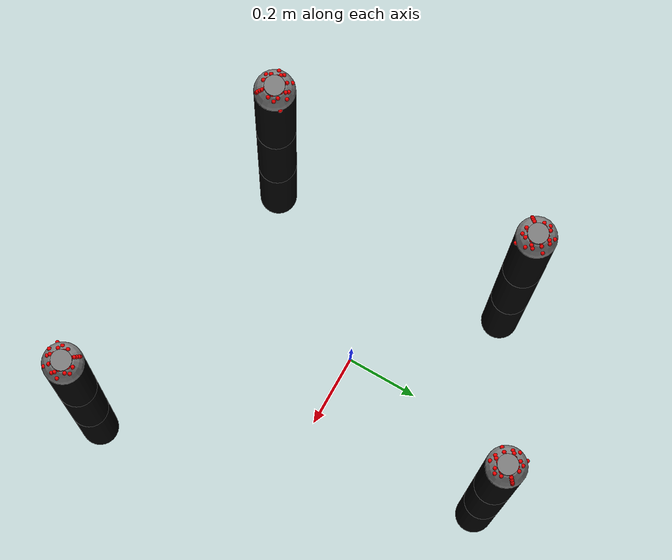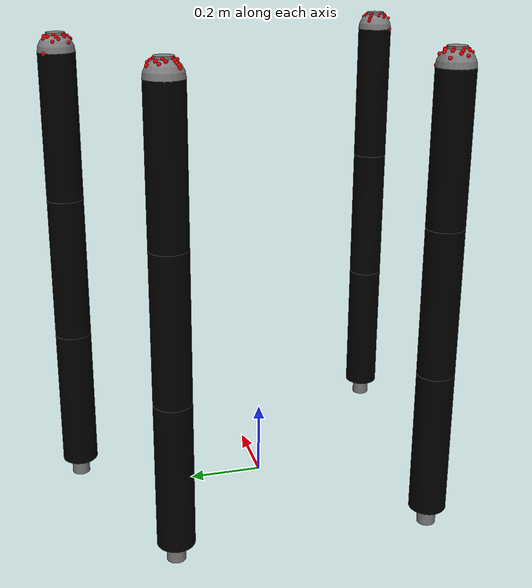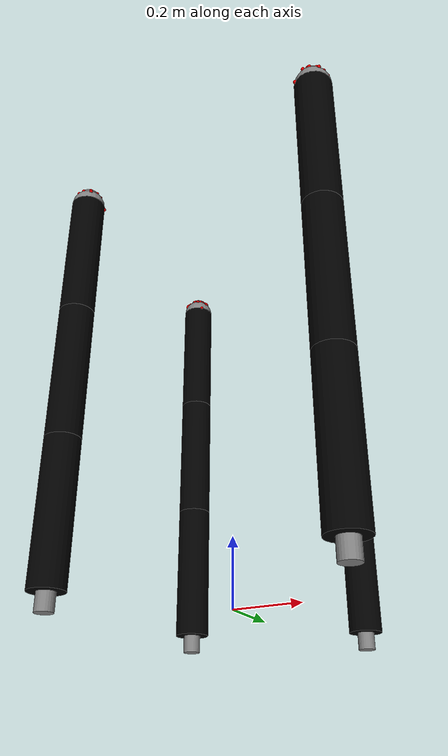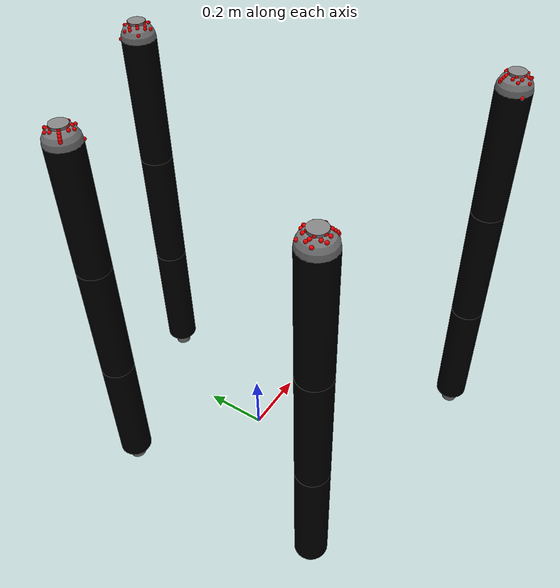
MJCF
<mujoco model="custom_environment">
    <compiler angle="radian" meshdir="assets"/>
    <option cone="elliptic" impratio="10" iterations="50" tolerance="1e-6" solver="Newton"/>
    <asset>
        <!-- 추가적인 자산 (예: 메쉬 파일, 텍스처 등)을 여기 추가할 수 있습니다 -->
    </asset>

    <default>
        <default class="robot_geom">
            <geom type="cylinder" size="0.05 0.2" pos="0 0 0.2" rgba="0 0 0 1" contype="1" conaffinity="1"/>
        </default>
        <default class="guide_geom">
            <geom type="cylinder" size="0.025 0.45" pos="0 0 0.4"/>
        </default>
        <default class="vertical_joint">
            <joint type="slide" axis="0 0 1" pos="0 0 0" range="0 3" armature="0.005" stiffness="1000" damping="10000"/>
        </default>
        <default class="sensor_geom">
            <geom type="sphere" size="0.01" pos="0 0 0" rgba="1 0 0 0" contype="1" conaffinity="1"/>
        </default>

    </default>

    <worldbody>
        <!-- 로봇 1 -->
        <body name="robot1" pos="-0.3 0.3 0.0" quat="-0.3827 0 0 0.9239">
            <body name="robot1_link1" pos="0 0 0">
                <joint name="robot1_vertical_joint" class="vertical_joint" damping="100000"/>
                <geom name="robot1_link1_geom" class="robot_geom"/>
                <body name="robot1_link2" pos="0 0 0.4">
                    <joint name="robot1_vertical_joint2" class="vertical_joint"/>
                    <geom name="robot1_link2_geom" class="robot_geom" />
                    <body name="robot1_link3" pos="0 0 0.4">
                        <joint name="robot1_vertical_joint3" class="vertical_joint"/>
                        <geom name="robot1_link3_geom" class="robot_geom" />
                        <body name="robot1_end_effector" pos="0 0 0.4">
                            <geom name="robot1_ee_geom" type="sphere" size="0.05" pos="0 0 0"/>
                            <!--touch_sensor-->
                            <!-- layer 1 -->
                            <geom name="robot1_touch_geom_1" type="sphere" size="0.005" pos="0.000000 0.050000 0.000000" rgba="1 0 0 0.5"/>
                            <site name="robot1_sensor_1" pos="0.000000 0.050000 0.000000" size="0.005" rgba="1 0 0 1"/>
                            <!-- 레이어 2 -->
                            <!-- 센서 2 -->
                            <geom name="robot1_touch_geom_2" type="sphere" size="0.005" pos="0.02236 0.00000 0.04500" rgba="1 0 0 0.5"/>
                            <site name="robot1_sensor_2" pos="0.02236 0.00000 0.04500" size="0.005" rgba="1 0 0 1"/>
                            <!-- 센서 3 -->
                            <geom name="robot1_touch_geom_3" type="sphere" size="0.005" pos="0.01118 0.01936 0.04500" rgba="1 0 0 0.5"/>
                            <site name="robot1_sensor_3" pos="0.01118 0.01936 0.04500" size="0.005" rgba="1 0 0 1"/>
                            <!-- 센서 4 -->
                            <geom name="robot1_touch_geom_4" type="sphere" size="0.005" pos="-0.01118 0.01936 0.04500" rgba="1 0 0 0.5"/>
                            <site name="robot1_sensor_4" pos="-0.01118 0.01936 0.04500" size="0.005" rgba="1 0 0 1"/>
                            <!-- 센서 5 -->
                            <geom name="robot1_touch_geom_5" type="sphere" size="0.005" pos="-0.02236 0.00000 0.04500" rgba="1 0 0 0.5"/>
                            <site name="robot1_sensor_5" pos="-0.02236 0.00000 0.04500" size="0.005" rgba="1 0 0 1"/>
                            <!-- 센서 6 -->
                            <geom name="robot1_touch_geom_6" type="sphere" size="0.005" pos="-0.01118 -0.01936 0.04500" rgba="1 0 0 0.5"/>
                            <site name="robot1_sensor_6" pos="-0.01118 -0.01936 0.04500" size="0.005" rgba="1 0 0 1"/>
                            <!-- 센서 7 -->
                            <geom name="robot1_touch_geom_7" type="sphere" size="0.005" pos="0.01118 -0.01936 0.04500" rgba="1 0 0 0.5"/>
                            <site name="robot1_sensor_7" pos="0.01118 -0.01936 0.04500" size="0.005" rgba="1 0 0 1"/>

                            <!-- 레이어 3 -->
                            <!-- 센서 8 -->
                            <geom name="robot1_touch_geom_8" type="sphere" size="0.005" pos="0.03000 0.00000 0.04000" rgba="1 0 0 0.5"/>
                            <site name="robot1_sensor_8" pos="0.03000 0.00000 0.04000" size="0.005" rgba="1 0 0 1"/>
                            <!-- 센서 9 -->
                            <geom name="robot1_touch_geom_9" type="sphere" size="0.005" pos="0.02121 0.02121 0.04000" rgba="1 0 0 0.5"/>
                            <site name="robot1_sensor_9" pos="0.02121 0.02121 0.04000" size="0.005" rgba="1 0 0 1"/>
                            <!-- 센서 10 -->
                            <geom name="robot1_touch_geom_10" type="sphere" size="0.005" pos="0.00000 0.03000 0.04000" rgba="1 0 0 0.5"/>
                            <site name="robot1_sensor_10" pos="0.00000 0.03000 0.04000" size="0.005" rgba="1 0 0 1"/>
                            <!-- 센서 11 -->
                            <geom name="robot1_touch_geom_11" type="sphere" size="0.005" pos="-0.02121 0.02121 0.04000" rgba="1 0 0 0.5"/>
                            <site name="robot1_sensor_11" pos="-0.02121 0.02121 0.04000" size="0.005" rgba="1 0 0 1"/>
                            <!-- 센서 12 -->
                            <geom name="robot1_touch_geom_12" type="sphere" size="0.005" pos="-0.03000 0.00000 0.04000" rgba="1 0 0 0.5"/>
                            <site name="robot1_sensor_12" pos="-0.03000 0.00000 0.04000" size="0.005" rgba="1 0 0 1"/>
                            <!-- 센서 13 -->
                            <geom name="robot1_touch_geom_13" type="sphere" size="0.005" pos="-0.02121 -0.02121 0.04000" rgba="1 0 0 0.5"/>
                            <site name="robot1_sensor_13" pos="-0.02121 -0.02121 0.04000" size="0.005" rgba="1 0 0 1"/>
                            <!-- 센서 14 -->
                            <geom name="robot1_touch_geom_14" type="sphere" size="0.005" pos="0.00000 -0.03000 0.04000" rgba="1 0 0 0.5"/>
                            <site name="robot1_sensor_14" pos="0.00000 -0.03000 0.04000" size="0.005" rgba="1 0 0 1"/>
                            <!-- 센서 15 -->
                            <geom name="robot1_touch_geom_15" type="sphere" size="0.005" pos="0.02121 -0.02121 0.04000" rgba="1 0 0 0.5"/>
                            <site name="robot1_sensor_15" pos="0.02121 -0.02121 0.04000" size="0.005" rgba="1 0 0 1"/>

                            <!-- 레이어 4 -->
                            <!-- 센서 16 -->
                            <geom name="robot1_touch_geom_16" type="sphere" size="0.005" pos="0.03536 0.00000 0.03500" rgba="1 0 0 0.5"/>
                            <site name="robot1_sensor_16" pos="0.03536 0.00000 0.03500" size="0.005" rgba="1 0 0 1"/>
                            <!-- 센서 17 -->
                            <geom name="robot1_touch_geom_17" type="sphere" size="0.005" pos="0.01092 0.03343 0.03500" rgba="1 0 0 0.5"/>
                            <site name="robot1_sensor_17" pos="0.01092 0.03343 0.03500" size="0.005" rgba="1 0 0 1"/>
                            <!-- 센서 18 -->
                            <geom name="robot1_touch_geom_18" type="sphere" size="0.005" pos="-0.02863 0.02065 0.03500" rgba="1 0 0 0.5"/>
                            <site name="robot1_sensor_18" pos="-0.02863 0.02065 0.03500" size="0.005" rgba="1 0 0 1"/>
                            <!-- 센서 19 -->
                            <geom name="robot1_touch_geom_19" type="sphere" size="0.005" pos="-0.02863 -0.02065 0.03500" rgba="1 0 0 0.5"/>
                            <site name="robot1_sensor_19" pos="-0.02863 -0.02065 0.03500" size="0.005" rgba="1 0 0 1"/>
                            <!-- 센서 20 -->
                            <geom name="robot1_touch_geom_20" type="sphere" size="0.005" pos="0.01092 -0.03343 0.03500" rgba="1 0 0 0.5"/>
                            <site name="robot1_sensor_20" pos="0.01092 -0.03343 0.03500" size="0.005" rgba="1 0 0 1"/>

                            <!-- 레이어 5 -->
                            <!-- 센서 21 -->
                            <geom name="robot1_touch_geom_21" type="sphere" size="0.005" pos="0.04082 0.00000 0.03000" rgba="1 0 0 0.5"/>
                            <site name="robot1_sensor_21" pos="0.04082 0.00000 0.03000" size="0.005" rgba="1 0 0 1"/>
                            <!-- 센서 22 -->
                            <geom name="robot1_touch_geom_22" type="sphere" size="0.005" pos="-0.02041 0.03534 0.03000" rgba="1 0 0 0.5"/>
                            <site name="robot1_sensor_22" pos="-0.02041 0.03534 0.03000" size="0.005" rgba="1 0 0 1"/>
                            <!-- 센서 23 -->
                            <geom name="robot1_touch_geom_23" type="sphere" size="0.005" pos="-0.02041 -0.03534 0.03000" rgba="1 0 0 0.5"/>
                            <site name="robot1_sensor_23" pos="-0.02041 -0.03534 0.03000" size="0.005" rgba="1 0 0 1"/>

                            <!-- 레이어 6 -->
                            <!-- 센서 24 -->
                            <geom name="robot1_touch_geom_24" type="sphere" size="0.005" pos="0.04330 0.00000 0.02500" rgba="1 0 0 0.5"/>
                            <site name="robot1_sensor_24" pos="0.04330 0.00000 0.02500" size="0.005" rgba="1 0 0 1"/>
                            <!-- 센서 25 -->
                            <geom name="robot1_touch_geom_25" type="sphere" size="0.005" pos="-0.04330 0.00000 0.02500" rgba="1 0 0 0.5"/>
                            <site name="robot1_sensor_25" pos="-0.04330 0.00000 0.02500" size="0.005" rgba="1 0 0 1"/>
                        </body>
                    </body>
                    <body name="robot1_guide2" pos="0 0 0">
                        <geom name="robot1_guide2_geom" class="guide_geom"/>
                    </body>
                </body>
                <body name="robot1_guide" pos="0 0 0">
                    <geom name="robot1_guide_geom" class="guide_geom"/>
                </body>
            </body>
        </body>
                <!-- 로봇 2 -->
        <body name="robot2" pos="-0.3 -0.4 0.0" quat="-0.9239 0 0 0.3827">
            <body name="robot2_link1" pos="0 0 0">
                <joint name="robot2_vertical_joint" class="vertical_joint" damping="100000"/>
                <geom name="robot2_link1_geom" class="robot_geom"/>
                <body name="robot2_link2" pos="0 0 0.4">
                    <joint name="robot2_vertical_joint2" class="vertical_joint"/>
                    <geom name="robot2_link2_geom" class="robot_geom"  />
                    <body name="robot2_link3" pos="0 0 0.4">
                        <joint name="robot2_vertical_joint3" class="vertical_joint"/>
                        <geom name="robot2_link3_geom" class="robot_geom" />
                        <body name="robot2_end_effector" pos="0 0 0.4">
                            <geom name="robot2_ee_geom" type="sphere" size="0.05" pos="0 0 0"/>
                            <!--touch_sensor-->
                            <!-- layer 1 -->
                            <geom name="robot2_touch_geom_1" type="sphere" size="0.005" pos="0.000000 0.050000 0.000000" rgba="1 0 0 0.5"/>
                            <site name="robot2_sensor_1" pos="0.000000 0.050000 0.000000" size="0.005" rgba="1 0 0 1"/>
                            <!-- 레이어 2 -->
                            <!-- 센서 2 -->
                            <geom name="robot2_touch_geom_2" type="sphere" size="0.005" pos="0.02236 0.00000 0.04500" rgba="1 0 0 0.5"/>
                            <site name="robot2_sensor_2" pos="0.02236 0.00000 0.04500" size="0.005" rgba="1 0 0 1"/>
                            <!-- 센서 3 -->
                            <geom name="robot2_touch_geom_3" type="sphere" size="0.005" pos="0.01118 0.01936 0.04500" rgba="1 0 0 0.5"/>
                            <site name="robot2_sensor_3" pos="0.01118 0.01936 0.04500" size="0.005" rgba="1 0 0 1"/>
                            <!-- 센서 4 -->
                            <geom name="robot2_touch_geom_4" type="sphere" size="0.005" pos="-0.01118 0.01936 0.04500" rgba="1 0 0 0.5"/>
                            <site name="robot2_sensor_4" pos="-0.01118 0.01936 0.04500" size="0.005" rgba="1 0 0 1"/>
                            <!-- 센서 5 -->
                            <geom name="robot2_touch_geom_5" type="sphere" size="0.005" pos="-0.02236 0.00000 0.04500" rgba="1 0 0 0.5"/>
                            <site name="robot2_sensor_5" pos="-0.02236 0.00000 0.04500" size="0.005" rgba="1 0 0 1"/>
                            <!-- 센서 6 -->
                            <geom name="robot2_touch_geom_6" type="sphere" size="0.005" pos="-0.01118 -0.01936 0.04500" rgba="1 0 0 0.5"/>
                            <site name="robot2_sensor_6" pos="-0.01118 -0.01936 0.04500" size="0.005" rgba="1 0 0 1"/>
                            <!-- 센서 7 -->
                            <geom name="robot2_touch_geom_7" type="sphere" size="0.005" pos="0.01118 -0.01936 0.04500" rgba="1 0 0 0.5"/>
                            <site name="robot2_sensor_7" pos="0.01118 -0.01936 0.04500" size="0.005" rgba="1 0 0 1"/>

                            <!-- 레이어 3 -->
                            <!-- 센서 8 -->
                            <geom name="robot2_touch_geom_8" type="sphere" size="0.005" pos="0.03000 0.00000 0.04000" rgba="1 0 0 0.5"/>
                            <site name="robot2_sensor_8" pos="0.03000 0.00000 0.04000" size="0.005" rgba="1 0 0 1"/>
                            <!-- 센서 9 -->
                            <geom name="robot2_touch_geom_9" type="sphere" size="0.005" pos="0.02121 0.02121 0.04000" rgba="1 0 0 0.5"/>
                            <site name="robot2_sensor_9" pos="0.02121 0.02121 0.04000" size="0.005" rgba="1 0 0 1"/>
                            <!-- 센서 10 -->
                            <geom name="robot2_touch_geom_10" type="sphere" size="0.005" pos="0.00000 0.03000 0.04000" rgba="1 0 0 0.5"/>
                            <site name="robot2_sensor_10" pos="0.00000 0.03000 0.04000" size="0.005" rgba="1 0 0 1"/>
                            <!-- 센서 11 -->
                            <geom name="robot2_touch_geom_11" type="sphere" size="0.005" pos="-0.02121 0.02121 0.04000" rgba="1 0 0 0.5"/>
                            <site name="robot2_sensor_11" pos="-0.02121 0.02121 0.04000" size="0.005" rgba="1 0 0 1"/>
                            <!-- 센서 12 -->
                            <geom name="robot2_touch_geom_12" type="sphere" size="0.005" pos="-0.03000 0.00000 0.04000" rgba="1 0 0 0.5"/>
                            <site name="robot2_sensor_12" pos="-0.03000 0.00000 0.04000" size="0.005" rgba="1 0 0 1"/>
                            <!-- 센서 13 -->
                            <geom name="robot2_touch_geom_13" type="sphere" size="0.005" pos="-0.02121 -0.02121 0.04000" rgba="1 0 0 0.5"/>
                            <site name="robot2_sensor_13" pos="-0.02121 -0.02121 0.04000" size="0.005" rgba="1 0 0 1"/>
                            <!-- 센서 14 -->
                            <geom name="robot2_touch_geom_14" type="sphere" size="0.005" pos="0.00000 -0.03000 0.04000" rgba="1 0 0 0.5"/>
                            <site name="robot2_sensor_14" pos="0.00000 -0.03000 0.04000" size="0.005" rgba="1 0 0 1"/>
                            <!-- 센서 15 -->
                            <geom name="robot2_touch_geom_15" type="sphere" size="0.005" pos="0.02121 -0.02121 0.04000" rgba="1 0 0 0.5"/>
                            <site name="robot2_sensor_15" pos="0.02121 -0.02121 0.04000" size="0.005" rgba="1 0 0 1"/>

                            <!-- 레이어 4 -->
                            <!-- 센서 16 -->
                            <geom name="robot2_touch_geom_16" type="sphere" size="0.005" pos="0.03536 0.00000 0.03500" rgba="1 0 0 0.5"/>
                            <site name="robot2_sensor_16" pos="0.03536 0.00000 0.03500" size="0.005" rgba="1 0 0 1"/>
                            <!-- 센서 17 -->
                            <geom name="robot2_touch_geom_17" type="sphere" size="0.005" pos="0.01092 0.03343 0.03500" rgba="1 0 0 0.5"/>
                            <site name="robot2_sensor_17" pos="0.01092 0.03343 0.03500" size="0.005" rgba="1 0 0 1"/>
                            <!-- 센서 18 -->
                            <geom name="robot2_touch_geom_18" type="sphere" size="0.005" pos="-0.02863 0.02065 0.03500" rgba="1 0 0 0.5"/>
                            <site name="robot2_sensor_18" pos="-0.02863 0.02065 0.03500" size="0.005" rgba="1 0 0 1"/>
                            <!-- 센서 19 -->
                            <geom name="robot2_touch_geom_19" type="sphere" size="0.005" pos="-0.02863 -0.02065 0.03500" rgba="1 0 0 0.5"/>
                            <site name="robot2_sensor_19" pos="-0.02863 -0.02065 0.03500" size="0.005" rgba="1 0 0 1"/>
                            <!-- 센서 20 -->
                            <geom name="robot2_touch_geom_20" type="sphere" size="0.005" pos="0.01092 -0.03343 0.03500" rgba="1 0 0 0.5"/>
                            <site name="robot2_sensor_20" pos="0.01092 -0.03343 0.03500" size="0.005" rgba="1 0 0 1"/>

                            <!-- 레이어 5 -->
                            <!-- 센서 21 -->
                            <geom name="robot2_touch_geom_21" type="sphere" size="0.005" pos="0.04082 0.00000 0.03000" rgba="1 0 0 0.5"/>
                            <site name="robot2_sensor_21" pos="0.04082 0.00000 0.03000" size="0.005" rgba="1 0 0 1"/>
                            <!-- 센서 22 -->
                            <geom name="robot2_touch_geom_22" type="sphere" size="0.005" pos="-0.02041 0.03534 0.03000" rgba="1 0 0 0.5"/>
                            <site name="robot2_sensor_22" pos="-0.02041 0.03534 0.03000" size="0.005" rgba="1 0 0 1"/>
                            <!-- 센서 23 -->
                            <geom name="robot2_touch_geom_23" type="sphere" size="0.005" pos="-0.02041 -0.03534 0.03000" rgba="1 0 0 0.5"/>
                            <site name="robot2_sensor_23" pos="-0.02041 -0.03534 0.03000" size="0.005" rgba="1 0 0 1"/>

                            <!-- 레이어 6 -->
                            <!-- 센서 24 -->
                            <geom name="robot2_touch_geom_24" type="sphere" size="0.005" pos="0.04330 0.00000 0.02500" rgba="1 0 0 0.5"/>
                            <site name="robot2_sensor_24" pos="0.04330 0.00000 0.02500" size="0.005" rgba="1 0 0 1"/>
                            <!-- 센서 25 -->
                            <geom name="robot2_touch_geom_25" type="sphere" size="0.005" pos="-0.04330 0.00000 0.02500" rgba="1 0 0 0.5"/>
                            <site name="robot2_sensor_25" pos="-0.04330 0.00000 0.02500" size="0.005" rgba="1 0 0 1"/>
                        </body>
                    </body>
                    <body name="robot2_guide2" pos="0 0 0">
                        <geom name="robot2_guide2_geom" class="guide_geom"/>
                    </body>
                </body>
                <body name="robot2_guide" pos="0 0 0">
                    <geom name="robot2_guide_geom" class="guide_geom"/>
                </body>
            </body>
        </body>
                <!-- 로봇 3 -->
        <body name="robot3" pos="0.5 -0.5 0" quat="0.3827 0 0 0.9239">
            <body name="robot3_link1" pos="0 0 0">
                <joint name="robot3_vertical_joint" class="vertical_joint" damping="100000"/>
                <geom name="robot3_link1_geom" class="robot_geom"/>
                <body name="robot3_link2" pos="0 0 0.4">
                    <joint name="robot3_vertical_joint2" class="vertical_joint"/>
                    <geom name="robot3_link2_geom" class="robot_geom"  />
                    <body name="robot3_link3" pos="0 0 0.4">
                        <joint name="robot3_vertical_joint3" class="vertical_joint"/>
                        <geom name="robot3_link3_geom" class="robot_geom"/>
                        <body name="robot3_end_effector" pos="0 0 0.4">
                            <geom name="robot3_ee_geom" type="sphere" size="0.05" pos="0 0 0"/>
                            <!--touch_sensor-->
                            <!-- layer 1 -->
                            <geom name="robot3_touch_geom_1" type="sphere" size="0.005" pos="0.000000 0.050000 0.000000" rgba="1 0 0 0.5"/>
                            <site name="robot3_sensor_1" pos="0.000000 0.050000 0.000000" size="0.005" rgba="1 0 0 1"/>
                            <!-- 레이어 2 -->
                            <!-- 센서 2 -->
                            <geom name="robot3_touch_geom_2" type="sphere" size="0.005" pos="0.02236 0.00000 0.04500" rgba="1 0 0 0.5"/>
                            <site name="robot3_sensor_2" pos="0.02236 0.00000 0.04500" size="0.005" rgba="1 0 0 1"/>
                            <!-- 센서 3 -->
                            <geom name="robot3_touch_geom_3" type="sphere" size="0.005" pos="0.01118 0.01936 0.04500" rgba="1 0 0 0.5"/>
                            <site name="robot3_sensor_3" pos="0.01118 0.01936 0.04500" size="0.005" rgba="1 0 0 1"/>
                            <!-- 센서 4 -->
                            <geom name="robot3_touch_geom_4" type="sphere" size="0.005" pos="-0.01118 0.01936 0.04500" rgba="1 0 0 0.5"/>
                            <site name="robot3_sensor_4" pos="-0.01118 0.01936 0.04500" size="0.005" rgba="1 0 0 1"/>
                            <!-- 센서 5 -->
                            <geom name="robot3_touch_geom_5" type="sphere" size="0.005" pos="-0.02236 0.00000 0.04500" rgba="1 0 0 0.5"/>
                            <site name="robot3_sensor_5" pos="-0.02236 0.00000 0.04500" size="0.005" rgba="1 0 0 1"/>
                            <!-- 센서 6 -->
                            <geom name="robot3_touch_geom_6" type="sphere" size="0.005" pos="-0.01118 -0.01936 0.04500" rgba="1 0 0 0.5"/>
                            <site name="robot3_sensor_6" pos="-0.01118 -0.01936 0.04500" size="0.005" rgba="1 0 0 1"/>
                            <!-- 센서 7 -->
                            <geom name="robot3_touch_geom_7" type="sphere" size="0.005" pos="0.01118 -0.01936 0.04500" rgba="1 0 0 0.5"/>
                            <site name="robot3_sensor_7" pos="0.01118 -0.01936 0.04500" size="0.005" rgba="1 0 0 1"/>

                            <!-- 레이어 3 -->
                            <!-- 센서 8 -->
                            <geom name="robot3_touch_geom_8" type="sphere" size="0.005" pos="0.03000 0.00000 0.04000" rgba="1 0 0 0.5"/>
                            <site name="robot3_sensor_8" pos="0.03000 0.00000 0.04000" size="0.005" rgba="1 0 0 1"/>
                            <!-- 센서 9 -->
                            <geom name="robot3_touch_geom_9" type="sphere" size="0.005" pos="0.02121 0.02121 0.04000" rgba="1 0 0 0.5"/>
                            <site name="robot3_sensor_9" pos="0.02121 0.02121 0.04000" size="0.005" rgba="1 0 0 1"/>
                            <!-- 센서 10 -->
                            <geom name="robot3_touch_geom_10" type="sphere" size="0.005" pos="0.00000 0.03000 0.04000" rgba="1 0 0 0.5"/>
                            <site name="robot3_sensor_10" pos="0.00000 0.03000 0.04000" size="0.005" rgba="1 0 0 1"/>
                            <!-- 센서 11 -->
                            <geom name="robot3_touch_geom_11" type="sphere" size="0.005" pos="-0.02121 0.02121 0.04000" rgba="1 0 0 0.5"/>
                            <site name="robot3_sensor_11" pos="-0.02121 0.02121 0.04000" size="0.005" rgba="1 0 0 1"/>
                            <!-- 센서 12 -->
                            <geom name="robot3_touch_geom_12" type="sphere" size="0.005" pos="-0.03000 0.00000 0.04000" rgba="1 0 0 0.5"/>
                            <site name="robot3_sensor_12" pos="-0.03000 0.00000 0.04000" size="0.005" rgba="1 0 0 1"/>
                            <!-- 센서 13 -->
                            <geom name="robot3_touch_geom_13" type="sphere" size="0.005" pos="-0.02121 -0.02121 0.04000" rgba="1 0 0 0.5"/>
                            <site name="robot3_sensor_13" pos="-0.02121 -0.02121 0.04000" size="0.005" rgba="1 0 0 1"/>
                            <!-- 센서 14 -->
                            <geom name="robot3_touch_geom_14" type="sphere" size="0.005" pos="0.00000 -0.03000 0.04000" rgba="1 0 0 0.5"/>
                            <site name="robot3_sensor_14" pos="0.00000 -0.03000 0.04000" size="0.005" rgba="1 0 0 1"/>
                            <!-- 센서 15 -->
                            <geom name="robot3_touch_geom_15" type="sphere" size="0.005" pos="0.02121 -0.02121 0.04000" rgba="1 0 0 0.5"/>
                            <site name="robot3_sensor_15" pos="0.02121 -0.02121 0.04000" size="0.005" rgba="1 0 0 1"/>

                            <!-- 레이어 4 -->
                            <!-- 센서 16 -->
                            <geom name="robot3_touch_geom_16" type="sphere" size="0.005" pos="0.03536 0.00000 0.03500" rgba="1 0 0 0.5"/>
                            <site name="robot3_sensor_16" pos="0.03536 0.00000 0.03500" size="0.005" rgba="1 0 0 1"/>
                            <!-- 센서 17 -->
                            <geom name="robot3_touch_geom_17" type="sphere" size="0.005" pos="0.01092 0.03343 0.03500" rgba="1 0 0 0.5"/>
                            <site name="robot3_sensor_17" pos="0.01092 0.03343 0.03500" size="0.005" rgba="1 0 0 1"/>
                            <!-- 센서 18 -->
                            <geom name="robot3_touch_geom_18" type="sphere" size="0.005" pos="-0.02863 0.02065 0.03500" rgba="1 0 0 0.5"/>
                            <site name="robot3_sensor_18" pos="-0.02863 0.02065 0.03500" size="0.005" rgba="1 0 0 1"/>
                            <!-- 센서 19 -->
                            <geom name="robot3_touch_geom_19" type="sphere" size="0.005" pos="-0.02863 -0.02065 0.03500" rgba="1 0 0 0.5"/>
                            <site name="robot3_sensor_19" pos="-0.02863 -0.02065 0.03500" size="0.005" rgba="1 0 0 1"/>
                            <!-- 센서 20 -->
                            <geom name="robot3_touch_geom_20" type="sphere" size="0.005" pos="0.01092 -0.03343 0.03500" rgba="1 0 0 0.5"/>
                            <site name="robot3_sensor_20" pos="0.01092 -0.03343 0.03500" size="0.005" rgba="1 0 0 1"/>

                            <!-- 레이어 5 -->
                            <!-- 센서 21 -->
                            <geom name="robot3_touch_geom_21" type="sphere" size="0.005" pos="0.04082 0.00000 0.03000" rgba="1 0 0 0.5"/>
                            <site name="robot3_sensor_21" pos="0.04082 0.00000 0.03000" size="0.005" rgba="1 0 0 1"/>
                            <!-- 센서 22 -->
                            <geom name="robot3_touch_geom_22" type="sphere" size="0.005" pos="-0.02041 0.03534 0.03000" rgba="1 0 0 0.5"/>
                            <site name="robot3_sensor_22" pos="-0.02041 0.03534 0.03000" size="0.005" rgba="1 0 0 1"/>
                            <!-- 센서 23 -->
                            <geom name="robot3_touch_geom_23" type="sphere" size="0.005" pos="-0.02041 -0.03534 0.03000" rgba="1 0 0 0.5"/>
                            <site name="robot3_sensor_23" pos="-0.02041 -0.03534 0.03000" size="0.005" rgba="1 0 0 1"/>

                            <!-- 레이어 6 -->
                            <!-- 센서 24 -->
                            <geom name="robot3_touch_geom_24" type="sphere" size="0.005" pos="0.04330 0.00000 0.02500" rgba="1 0 0 0.5"/>
                            <site name="robot3_sensor_24" pos="0.04330 0.00000 0.02500" size="0.005" rgba="1 0 0 1"/>
                            <!-- 센서 25 -->
                            <geom name="robot3_touch_geom_25" type="sphere" size="0.005" pos="-0.04330 0.00000 0.02500" rgba="1 0 0 0.5"/>
                            <site name="robot3_sensor_25" pos="-0.04330 0.00000 0.02500" size="0.005" rgba="1 0 0 1"/>

                         </body>
                    </body>
                    <body name="robot3_guide2" pos="0 0 0">
                        <geom name="robot3_guide2_geom" class="guide_geom"/>
                        <geom name="touch_geom3" class="sensor_geom"/>

                    </body>
                </body>
                <body name="robot3_guide" pos="0 0 0">
                    <geom name="robot3_guide_geom" class="guide_geom"/>
                </body>
            </body>
        </body>
                <!-- 로봇 4 -->
        <body name="robot4" pos="0.2 0.5 0" quat="0.9239 0 0 0.3827">
            <body name="robot4_link1" pos="0 0 0">
                <joint name="robot4_vertical_joint" class="vertical_joint" damping="100000"/>
                <geom name="robot4_link1_geom" class="robot_geom"/>
                <body name="robot4_link2" pos="0 0 0.4">
                    <joint name="robot4_vertical_joint2" class="vertical_joint"/>
                    <geom name="robot4_link2_geom" class="robot_geom" />z
                    <body name="robot4_link3" pos="0 0 0.4">
                        <joint name="robot4_vertical_joint3" class="vertical_joint"/>
                        <geom name="robot4_link3_geom" class="robot_geom"/>
                        <body name="robot4_end_effector" pos="0 0 0.4">
                            <geom name="robot4_ee_geom" type="sphere" size="0.05" pos="0 0 0"/>
                            <!--touch_sensor-->
                            <!-- layer 1 -->
                            <geom name="robot4_touch_geom_1" type="sphere" size="0.005" pos="0.000000 0.050000 0.000000" rgba="1 0 0 0.5"/>
                            <site name="robot4_sensor_1" pos="0.000000 0.050000 0.000000" size="0.005" rgba="1 0 0 1"/>
                            <!-- 레이어 2 -->
                            <!-- 센서 2 -->
                            <geom name="robot4_touch_geom_2" type="sphere" size="0.005" pos="0.02236 0.00000 0.04500" rgba="1 0 0 0.5"/>
                            <site name="robot4_sensor_2" pos="0.02236 0.00000 0.04500" size="0.005" rgba="1 0 0 1"/>
                            <!-- 센서 3 -->
                            <geom name="robot4_touch_geom_3" type="sphere" size="0.005" pos="0.01118 0.01936 0.04500" rgba="1 0 0 0.5"/>
                            <site name="robot4_sensor_3" pos="0.01118 0.01936 0.04500" size="0.005" rgba="1 0 0 1"/>
                            <!-- 센서 4 -->
                            <geom name="robot4_touch_geom_4" type="sphere" size="0.005" pos="-0.01118 0.01936 0.04500" rgba="1 0 0 0.5"/>
                            <site name="robot4_sensor_4" pos="-0.01118 0.01936 0.04500" size="0.005" rgba="1 0 0 1"/>
                            <!-- 센서 5 -->
                            <geom name="robot4_touch_geom_5" type="sphere" size="0.005" pos="-0.02236 0.00000 0.04500" rgba="1 0 0 0.5"/>
                            <site name="robot4_sensor_5" pos="-0.02236 0.00000 0.04500" size="0.005" rgba="1 0 0 1"/>
                            <!-- 센서 6 -->
                            <geom name="robot4_touch_geom_6" type="sphere" size="0.005" pos="-0.01118 -0.01936 0.04500" rgba="1 0 0 0.5"/>
                            <site name="robot4_sensor_6" pos="-0.01118 -0.01936 0.04500" size="0.005" rgba="1 0 0 1"/>
                            <!-- 센서 7 -->
                            <geom name="robot4_touch_geom_7" type="sphere" size="0.005" pos="0.01118 -0.01936 0.04500" rgba="1 0 0 0.5"/>
                            <site name="robot4_sensor_7" pos="0.01118 -0.01936 0.04500" size="0.005" rgba="1 0 0 1"/>

                            <!-- 레이어 3 -->
                            <!-- 센서 8 -->
                            <geom name="robot4_touch_geom_8" type="sphere" size="0.005" pos="0.03000 0.00000 0.04000" rgba="1 0 0 0.5"/>
                            <site name="robot4_sensor_8" pos="0.03000 0.00000 0.04000" size="0.005" rgba="1 0 0 1"/>
                            <!-- 센서 9 -->
                            <geom name="robot4_touch_geom_9" type="sphere" size="0.005" pos="0.02121 0.02121 0.04000" rgba="1 0 0 0.5"/>
                            <site name="robot4_sensor_9" pos="0.02121 0.02121 0.04000" size="0.005" rgba="1 0 0 1"/>
                            <!-- 센서 10 -->
                            <geom name="robot4_touch_geom_10" type="sphere" size="0.005" pos="0.00000 0.03000 0.04000" rgba="1 0 0 0.5"/>
                            <site name="robot4_sensor_10" pos="0.00000 0.03000 0.04000" size="0.005" rgba="1 0 0 1"/>
                            <!-- 센서 11 -->
                            <geom name="robot4_touch_geom_11" type="sphere" size="0.005" pos="-0.02121 0.02121 0.04000" rgba="1 0 0 0.5"/>
                            <site name="robot4_sensor_11" pos="-0.02121 0.02121 0.04000" size="0.005" rgba="1 0 0 1"/>
                            <!-- 센서 12 -->
                            <geom name="robot4_touch_geom_12" type="sphere" size="0.005" pos="-0.03000 0.00000 0.04000" rgba="1 0 0 0.5"/>
                            <site name="robot4_sensor_12" pos="-0.03000 0.00000 0.04000" size="0.005" rgba="1 0 0 1"/>
                            <!-- 센서 13 -->
                            <geom name="robot4_touch_geom_13" type="sphere" size="0.005" pos="-0.02121 -0.02121 0.04000" rgba="1 0 0 0.5"/>
                            <site name="robot4_sensor_13" pos="-0.02121 -0.02121 0.04000" size="0.005" rgba="1 0 0 1"/>
                            <!-- 센서 14 -->
                            <geom name="robot4_touch_geom_14" type="sphere" size="0.005" pos="0.00000 -0.03000 0.04000" rgba="1 0 0 0.5"/>
                            <site name="robot4_sensor_14" pos="0.00000 -0.03000 0.04000" size="0.005" rgba="1 0 0 1"/>
                            <!-- 센서 15 -->
                            <geom name="robot4_touch_geom_15" type="sphere" size="0.005" pos="0.02121 -0.02121 0.04000" rgba="1 0 0 0.5"/>
                            <site name="robot4_sensor_15" pos="0.02121 -0.02121 0.04000" size="0.005" rgba="1 0 0 1"/>

                            <!-- 레이어 4 -->
                            <!-- 센서 16 -->
                            <geom name="robot4_touch_geom_16" type="sphere" size="0.005" pos="0.03536 0.00000 0.03500" rgba="1 0 0 0.5"/>
                            <site name="robot4_sensor_16" pos="0.03536 0.00000 0.03500" size="0.005" rgba="1 0 0 1"/>
                            <!-- 센서 17 -->
                            <geom name="robot4_touch_geom_17" type="sphere" size="0.005" pos="0.01092 0.03343 0.03500" rgba="1 0 0 0.5"/>
                            <site name="robot4_sensor_17" pos="0.01092 0.03343 0.03500" size="0.005" rgba="1 0 0 1"/>
                            <!-- 센서 18 -->
                            <geom name="robot4_touch_geom_18" type="sphere" size="0.005" pos="-0.02863 0.02065 0.03500" rgba="1 0 0 0.5"/>
                            <site name="robot4_sensor_18" pos="-0.02863 0.02065 0.03500" size="0.005" rgba="1 0 0 1"/>
                            <!-- 센서 19 -->
                            <geom name="robot4_touch_geom_19" type="sphere" size="0.005" pos="-0.02863 -0.02065 0.03500" rgba="1 0 0 0.5"/>
                            <site name="robot4_sensor_19" pos="-0.02863 -0.02065 0.03500" size="0.005" rgba="1 0 0 1"/>
                            <!-- 센서 20 -->
                            <geom name="robot4_touch_geom_20" type="sphere" size="0.005" pos="0.01092 -0.03343 0.03500" rgba="1 0 0 0.5"/>
                            <site name="robot4_sensor_20" pos="0.01092 -0.03343 0.03500" size="0.005" rgba="1 0 0 1"/>

                            <!-- 레이어 5 -->
                            <!-- 센서 21 -->
                            <geom name="robot4_touch_geom_21" type="sphere" size="0.005" pos="0.04082 0.00000 0.03000" rgba="1 0 0 0.5"/>
                            <site name="robot4_sensor_21" pos="0.04082 0.00000 0.03000" size="0.005" rgba="1 0 0 1"/>
                            <!-- 센서 22 -->
                            <geom name="robot4_touch_geom_22" type="sphere" size="0.005" pos="-0.02041 0.03534 0.03000" rgba="1 0 0 0.5"/>
                            <site name="robot4_sensor_22" pos="-0.02041 0.03534 0.03000" size="0.005" rgba="1 0 0 1"/>
                            <!-- 센서 23 -->
                            <geom name="robot4_touch_geom_23" type="sphere" size="0.005" pos="-0.02041 -0.03534 0.03000" rgba="1 0 0 0.5"/>
                            <site name="robot4_sensor_23" pos="-0.02041 -0.03534 0.03000" size="0.005" rgba="1 0 0 1"/>

                            <!-- 레이어 6 -->
                            <!-- 센서 24 -->
                            <geom name="robot4_touch_geom_24" type="sphere" size="0.005" pos="0.04330 0.00000 0.02500" rgba="1 0 0 0.5"/>
                            <site name="robot4_sensor_24" pos="0.04330 0.00000 0.02500" size="0.005" rgba="1 0 0 1"/>
                            <!-- 센서 25 -->
                            <geom name="robot4_touch_geom_25" type="sphere" size="0.005" pos="-0.04330 0.00000 0.02500" rgba="1 0 0 0.5"/>
                            <site name="robot4_sensor_25" pos="-0.04330 0.00000 0.02500" size="0.005" rgba="1 0 0 1"/>

                        </body>
                    </body>
                    <body name="robot4_guide2" pos="0 0 0">
                        <geom name="robot4_guide2_geom" class="guide_geom"/>
                    </body>
                </body>
                <body name="robot4_guide" pos="0 0 0">
                    <geom name="robot4_guide_geom" class="guide_geom"/>
                </body>
            </body>
        </body>
    </worldbody>

    <actuator>
        <!-- 로봇 1 액추에이터 -->
        <position joint="robot1_vertical_joint" name="1_actuator_joint" kp="2000" />
        <position joint="robot1_vertical_joint2" name="1_actuator_joint2" kp="10000"/>
        <position joint="robot1_vertical_joint3" name="1_actuator_joint3" kp="10000"/>
         <!-- 로봇 2 액추에이터 -->
        <position joint="robot2_vertical_joint" name="2_actuator_joint" kp="2000"/>
        <position joint="robot2_vertical_joint2" name="2_actuator_joint2" kp="10000"/>
        <position joint="robot2_vertical_joint3" name="2_actuator_joint3" kp="10000"/>
         <!-- 로봇 2 액추에이터 -->
        <position joint="robot3_vertical_joint" name="3_actuator_joint" kp="2000"/>
        <position joint="robot3_vertical_joint2" name="3_actuator_joint2" kp="10000"/>
        <position joint="robot3_vertical_joint3" name="3_actuator_joint3" kp="10000"/>
         <!-- 로봇 2 액추에이터 -->
        <position joint="robot4_vertical_joint" name="4_actuator_joint" kp="2000"/>
        <position joint="robot4_vertical_joint2" name="4_actuator_joint2" kp="10000"/>
        <position joint="robot4_vertical_joint3" name="4_actuator_joint3" kp="10000"/>

    </actuator>

    <sensor>
        <!-- Robot1 터치 센서 -->
        <touch name="robot1_sensor1" site="robot1_sensor_1"/>
        <touch name="robot1_sensor2" site="robot1_sensor_2"/>
        <touch name="robot1_sensor3" site="robot1_sensor_3"/>
        <touch name="robot1_sensor4" site="robot1_sensor_4"/>
        <touch name="robot1_sensor5" site="robot1_sensor_5"/>
        <touch name="robot1_sensor6" site="robot1_sensor_6"/>
        <touch name="robot1_sensor7" site="robot1_sensor_7"/>
        <touch name="robot1_sensor8" site="robot1_sensor_8"/>
        <touch name="robot1_sensor9" site="robot1_sensor_9"/>
        <touch name="robot1_sensor10" site="robot1_sensor_10"/>
        <touch name="robot1_sensor11" site="robot1_sensor_11"/>
        <touch name="robot1_sensor12" site="robot1_sensor_12"/>
        <touch name="robot1_sensor13" site="robot1_sensor_13"/>
        <touch name="robot1_sensor14" site="robot1_sensor_14"/>
        <touch name="robot1_sensor15" site="robot1_sensor_15"/>
        <touch name="robot1_sensor16" site="robot1_sensor_16"/>
        <touch name="robot1_sensor17" site="robot1_sensor_17"/>
        <touch name="robot1_sensor18" site="robot1_sensor_18"/>
        <touch name="robot1_sensor19" site="robot1_sensor_19"/>
        <touch name="robot1_sensor20" site="robot1_sensor_20"/>
        <touch name="robot1_sensor21" site="robot1_sensor_21"/>
        <touch name="robot1_sensor22" site="robot1_sensor_22"/>
        <touch name="robot1_sensor23" site="robot1_sensor_23"/>
        <touch name="robot1_sensor24" site="robot1_sensor_24"/>
        <touch name="robot1_sensor25" site="robot1_sensor_25"/>

        <!-- Robot2 터치 센서 -->
        <touch name="robot2_sensor1" site="robot2_sensor_1"/>
        <touch name="robot2_sensor2" site="robot2_sensor_2"/>
        <touch name="robot2_sensor3" site="robot2_sensor_3"/>
        <touch name="robot2_sensor4" site="robot2_sensor_4"/>
        <touch name="robot2_sensor5" site="robot2_sensor_5"/>
        <touch name="robot2_sensor6" site="robot2_sensor_6"/>
        <touch name="robot2_sensor7" site="robot2_sensor_7"/>
        <touch name="robot2_sensor8" site="robot2_sensor_8"/>
        <touch name="robot2_sensor9" site="robot2_sensor_9"/>
        <touch name="robot2_sensor10" site="robot2_sensor_10"/>
        <touch name="robot2_sensor11" site="robot2_sensor_11"/>
        <touch name="robot2_sensor12" site="robot2_sensor_12"/>
        <touch name="robot2_sensor13" site="robot2_sensor_13"/>
        <touch name="robot2_sensor14" site="robot2_sensor_14"/>
        <touch name="robot2_sensor15" site="robot2_sensor_15"/>
        <touch name="robot2_sensor16" site="robot2_sensor_16"/>
        <touch name="robot2_sensor17" site="robot2_sensor_17"/>
        <touch name="robot2_sensor18" site="robot2_sensor_18"/>
        <touch name="robot2_sensor19" site="robot2_sensor_19"/>
        <touch name="robot2_sensor20" site="robot2_sensor_20"/>
        <touch name="robot2_sensor21" site="robot2_sensor_21"/>
        <touch name="robot2_sensor22" site="robot2_sensor_22"/>
        <touch name="robot2_sensor23" site="robot2_sensor_23"/>
        <touch name="robot2_sensor24" site="robot2_sensor_24"/>
        <touch name="robot2_sensor25" site="robot2_sensor_25"/>

        <!-- Robot3 터치 센서 -->
        <touch name="robot3_sensor1" site="robot3_sensor_1"/>
        <touch name="robot3_sensor2" site="robot3_sensor_2"/>
        <touch name="robot3_sensor3" site="robot3_sensor_3"/>
        <touch name="robot3_sensor4" site="robot3_sensor_4"/>
        <touch name="robot3_sensor5" site="robot3_sensor_5"/>
        <touch name="robot3_sensor6" site="robot3_sensor_6"/>
        <touch name="robot3_sensor7" site="robot3_sensor_7"/>
        <touch name="robot3_sensor8" site="robot3_sensor_8"/>
        <touch name="robot3_sensor9" site="robot3_sensor_9"/>
        <touch name="robot3_sensor10" site="robot3_sensor_10"/>
        <touch name="robot3_sensor11" site="robot3_sensor_11"/>
        <touch name="robot3_sensor12" site="robot3_sensor_12"/>
        <touch name="robot3_sensor13" site="robot3_sensor_13"/>
        <touch name="robot3_sensor14" site="robot3_sensor_14"/>
        <touch name="robot3_sensor15" site="robot3_sensor_15"/>
        <touch name="robot3_sensor16" site="robot3_sensor_16"/>
        <touch name="robot3_sensor17" site="robot3_sensor_17"/>
        <touch name="robot3_sensor18" site="robot3_sensor_18"/>
        <touch name="robot3_sensor19" site="robot3_sensor_19"/>
        <touch name="robot3_sensor20" site="robot3_sensor_20"/>
        <touch name="robot3_sensor21" site="robot3_sensor_21"/>
        <touch name="robot3_sensor22" site="robot3_sensor_22"/>
        <touch name="robot3_sensor23" site="robot3_sensor_23"/>
        <touch name="robot3_sensor24" site="robot3_sensor_24"/>
        <touch name="robot3_sensor25" site="robot3_sensor_25"/>

        <!-- Robot4 터치 센서 -->
        <touch name="robot4_sensor1" site="robot4_sensor_1"/>
        <touch name="robot4_sensor2" site="robot4_sensor_2"/>
        <touch name="robot4_sensor3" site="robot4_sensor_3"/>
        <touch name="robot4_sensor4" site="robot4_sensor_4"/>
        <touch name="robot4_sensor5" site="robot4_sensor_5"/>
        <touch name="robot4_sensor6" site="robot4_sensor_6"/>
        <touch name="robot4_sensor7" site="robot4_sensor_7"/>
        <touch name="robot4_sensor8" site="robot4_sensor_8"/>
        <touch name="robot4_sensor9" site="robot4_sensor_9"/>
        <touch name="robot4_sensor10" site="robot4_sensor_10"/>
        <touch name="robot4_sensor11" site="robot4_sensor_11"/>
        <touch name="robot4_sensor12" site="robot4_sensor_12"/>
        <touch name="robot4_sensor13" site="robot4_sensor_13"/>
        <touch name="robot4_sensor14" site="robot4_sensor_14"/>
        <touch name="robot4_sensor15" site="robot4_sensor_15"/>
        <touch name="robot4_sensor16" site="robot4_sensor_16"/>
        <touch name="robot4_sensor17" site="robot4_sensor_17"/>
        <touch name="robot4_sensor18" site="robot4_sensor_18"/>
        <touch name="robot4_sensor19" site="robot4_sensor_19"/>
        <touch name="robot4_sensor20" site="robot4_sensor_20"/>
        <touch name="robot4_sensor21" site="robot4_sensor_21"/>
        <touch name="robot4_sensor22" site="robot4_sensor_22"/>
        <touch name="robot4_sensor23" site="robot4_sensor_23"/>
        <touch name="robot4_sensor24" site="robot4_sensor_24"/>
        <touch name="robot4_sensor25" site="robot4_sensor_25"/>

    </sensor>

    <contact>
        <!-- 로봇 1 충돌 쌍 -->
        <pair geom1="robot1_link1_geom" geom2="robot1_link2_geom"/>
        <pair geom1="robot1_link2_geom" geom2="robot1_link3_geom"/>
        <!-- 로봇 2 충돌 쌍 -->
        <pair geom1="robot2_link1_geom" geom2="robot2_link2_geom"/>
        <pair geom1="robot2_link2_geom" geom2="robot2_link3_geom"/>
        <!-- 로봇 3 충돌 쌍 -->
        <pair geom1="robot3_link1_geom" geom2="robot3_link2_geom"/>
        <pair geom1="robot3_link2_geom" geom2="robot3_link3_geom"/>
        <!-- 로봇 4 충돌 쌍 -->
        <pair geom1="robot4_link1_geom" geom2="robot4_link2_geom"/>
        <pair geom1="robot4_link2_geom" geom2="robot4_link3_geom"/>

    </contact>

</mujoco>
